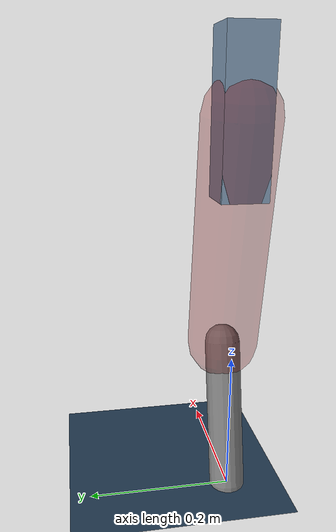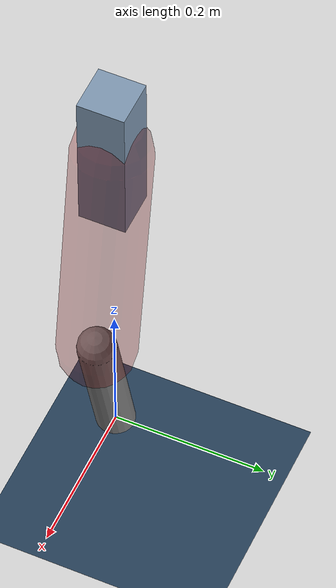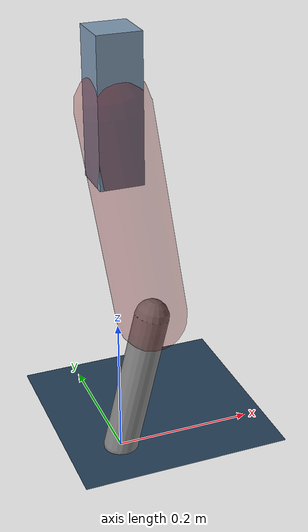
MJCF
<mujoco model="Hopper2D">
	<compiler inertiafromgeom="true" angle="radian" />
	<option timestep="0.001" integrator="implicit" cone="elliptic" solver="Newton" tolerance="1e-10" />

	<default>
		<geom contype="1" conaffinity="1" condim="3" friction="2 0.005 0.0001" solref="0.005 1" />
		<joint limited="true" damping="0.1" />
	</default>

	<asset>
		<texture name="skybox" type="skybox" builtin="gradient" rgb1=".4 .6 .8" rgb2="0 0 0" width="800" height="800" />
		<texture name="grid" type="2d" builtin="checker" rgb1=".1 .2 .3" rgb2=".2 .3 .4" width="300" height="300" mark="edge" markrgb=".2 .3 .4" />
		<material name="ground" texture="grid" texrepeat="1 1" texuniform="true" reflectance="0.1" />
		<material name="leg" rgba="0.5 0.6 0.7 1" />
	</asset>

	<worldbody>

		<geom name="floor" type="plane" size="5 5 0.25" material="ground" />

		<light directional="false" diffuse="0.8 0.8 0.8" specular="0.3 0.3 0.3" pos="0 0 2" dir="0 0 -1" />
		<light mode="targetbodycom" target="base" directional="false" diffuse="0.8 0.8 0.8" specular="0.3 0.3 0.3" pos="0 0 2" dir="0 0 -1" />

		<camera name="fixed" pos="0 -2 1" xyaxes="1 0 0 0 0 1" />
		<camera name="tracking" mode="trackcom" pos="0 -3 1" />

		<body name="root" pos="0 0 0.519544164520288">
			<joint name="slide_x" type="slide" axis="1 0 0" range="-100 100" />
			<joint name="slide_z" type="slide" axis="0 0 1" range="0 10" />

			<body name="base" pos="0 0 0">
				<geom name="torso" type="box" size="0.03 0.03 0.1" mass="2.3680000000000003" material="leg" />

				<body name="link1" pos="0 0 0" euler="0 1.4122714138146966 0">
					<joint type="hinge" axis="0 -1 0" pos="0 0 0" name="hinge1" limited="true" range="-3.14 3.14" stiffness="0" damping="0.1" />
					<geom name="thigh" type="capsule" fromto="0 0 0 0.3176273647237669 0 0" size="0.05" rgba="0.5 0 0 0.3" mass="1.0367566212265473" />

					<body name="link2" pos="0.3176273647237669 0 0" euler="0 0.39739820694119915 0">
						<joint type="hinge" axis="0 -1 0" pos="0 0 0" name="hinge2" limited="true" range="-3.14 3.14" stiffness="0" damping="0.1" />
						<geom name="shank" type="capsule" fromto="0 0 0 0.2119167997965211 0 0" size="0.025" mass="0.41092511981686897" />

					</body>
				</body>
			</body>
		</body>
	</worldbody>

	<actuator>
		<motor name="torque1" joint="hinge1" ctrlrange="-149.70023979625435 149.70023979625435" ctrllimited="true" gear="1" />
		<motor name="torque2" joint="hinge2" ctrlrange="-15.518492794021475 15.518492794021475" ctrllimited="true" gear="1" />
	</actuator>
</mujoco>
